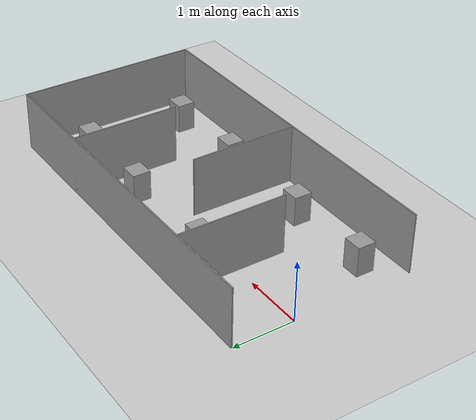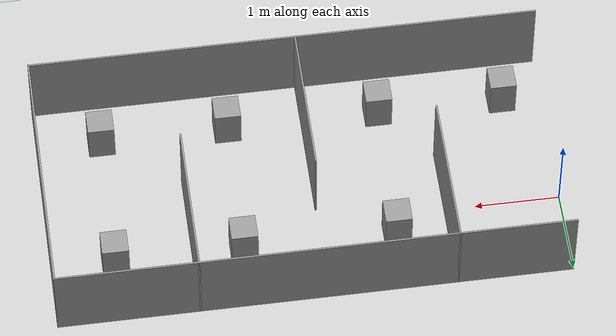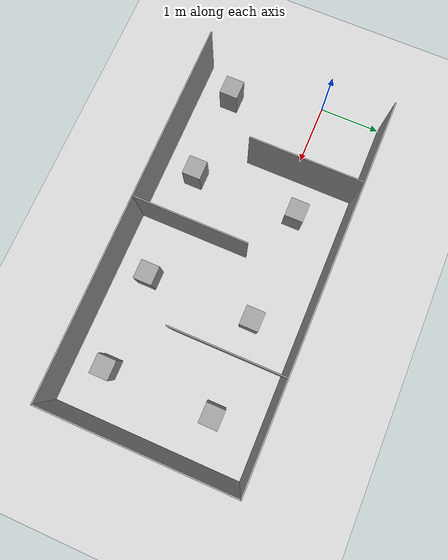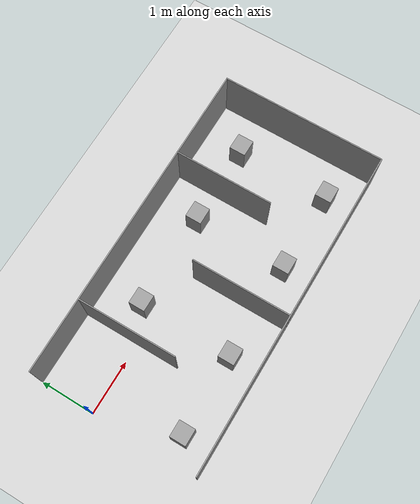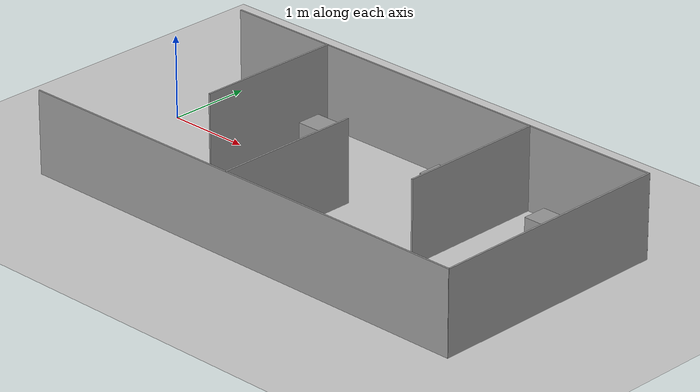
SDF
<sdf version="1.7">
 <world name="default">
  <light name="sun" type="directional">
   <pose>0 0 10 0 -0 0</pose>
   <diffuse>0.8 0.8 0.8 1</diffuse>
   <specular>0.2 0.2 0.2 1</specular>
   <attenuation>
    <range>1000</range>
    <constant>0.9</constant>
    <linear>0.01</linear>
    <quadratic>0.001</quadratic>
   </attenuation>
   <direction>-0.5 0.1 -0.9</direction>
   <spot><inner_angle>0</inner_angle><outer_angle>0</outer_angle><falloff>0</falloff></spot>
  </light>
  <model name="ground_plane">
   <static>1</static>
   <link name="link">
    <collision name="collision">
     <geometry><plane><normal>0 0 1</normal><size>100 100</size></plane></geometry>
     <surface><friction><ode><mu>100</mu><mu2>50</mu2></ode></friction></surface>
    </collision>
    <visual name="visual">
     <cast_shadows>0</cast_shadows>
     <geometry><plane><normal>0 0 1</normal><size>100 100</size></plane></geometry>
     <material>
      <script><uri>file://media/materials/scripts/gazebo.material</uri><name>Gazebo/Grey</name></script>
     </material>
    </visual>
   </link>
  </model>
  <gravity>0 0 -9.8</gravity>
  <magnetic_field>6e-06 2.3e-05 -4.2e-05</magnetic_field>
  <atmosphere type="adiabatic"/>
  <physics type="ode">
   <max_step_size>0.001</max_step_size>
   <real_time_factor>1</real_time_factor>
   <real_time_update_rate>1000</real_time_update_rate>
  </physics>
  <scene><ambient>0.4 0.4 0.4 1</ambient><background>0.7 0.7 0.7 1</background><shadows>1</shadows></scene>
  <spherical_coordinates>
   <surface_model>EARTH_WGS84</surface_model>
   <latitude_deg>0</latitude_deg>
   <longitude_deg>0</longitude_deg>
   <elevation>0</elevation>
   <heading_deg>0</heading_deg>
  </spherical_coordinates>
  <model name="competition">
   <pose>3.00157 -0.5015 0 0 -0 0</pose>
   <link name="Wall_0">
    <collision name="Wall_0_Collision">
     <geometry><box><size>6.02 0.02 1</size></box></geometry>
     <pose>0 0 0.5 0 -0 0</pose>
    </collision>
    <visual name="Wall_0_Visual">
     <pose>0 0 0.5 0 -0 0</pose>
     <geometry><box><size>6.02 0.02 1</size></box></geometry>
     <material>
      <script><uri>file://media/materials/scripts/gazebo.material</uri><name>Gazebo/Grey</name></script>
      <ambient>1 1 1 1</ambient>
     </material>
     <meta><layer>0</layer></meta>
    </visual>
    <pose>0.008432 1.5115 0 0 -0 0</pose>
   </link>
   <link name="Wall_105">
    <collision name="Wall_105_Collision">
     <geometry><box><size>0.31 0.3 0.5</size></box></geometry>
     <pose>0 0 0.25 0 -0 0</pose>
    </collision>
    <visual name="Wall_105_Visual">
     <pose>0 0 0.25 0 -0 0</pose>
     <geometry><box><size>0.31 0.3 0.5</size></box></geometry>
     <material>
      <script><uri>file://media/materials/scripts/gazebo.material</uri><name>Gazebo/Grey</name></script>
      <ambient>1 1 1 1</ambient>
     </material>
     <meta><layer>0</layer></meta>
    </visual>
    <pose>2.26343 0.7615 0 0 -0 0</pose>
   </link>
   <link name="Wall_19">
    <collision name="Wall_19_Collision">
     <geometry><box><size>1.82 0.02 1</size></box></geometry>
     <pose>0 0 0.5 0 -0 0</pose>
    </collision>
    <visual name="Wall_19_Visual">
     <pose>0 0 0.5 0 -0 0</pose>
     <geometry><box><size>1.82 0.02 1</size></box></geometry>
     <material>
      <script><uri>file://media/materials/scripts/gazebo.material</uri><name>Gazebo/Grey</name></script>
      <ambient>1 1 1 1</ambient>
     </material>
     <meta><layer>0</layer></meta>
    </visual>
    <pose>-1.64157 0.6115 0 0 -0 -1.5708</pose>
   </link>
   <link name="Wall_2">
    <collision name="Wall_2_Collision">
     <geometry><box><size>3.04 0.02 1</size></box></geometry>
     <pose>0 0 0.5 0 -0 0</pose>
    </collision>
    <visual name="Wall_2_Visual">
     <pose>0 0 0.5 0 -0 0</pose>
     <geometry><box><size>3.04 0.02 1</size></box></geometry>
     <material>
      <script><uri>file://media/materials/scripts/gazebo.material</uri><name>Gazebo/Grey</name></script>
      <ambient>1 1 1 1</ambient>
     </material>
     <meta><layer>0</layer></meta>
    </visual>
    <pose>3.00843 0.0005 0 0 -0 -1.5708</pose>
   </link>
   <link name="Wall_23">
    <collision name="Wall_23_Collision">
     <geometry><box><size>1.82 0.02 1</size></box></geometry>
     <pose>0 0 0.5 0 -0 0</pose>
    </collision>
    <visual name="Wall_23_Visual">
     <pose>0 0 0.5 0 -0 0</pose>
     <geometry><box><size>1.82 0.02 1</size></box></geometry>
     <material>
      <script><uri>file://media/materials/scripts/gazebo.material</uri><name>Gazebo/Grey</name></script>
      <ambient>1 1 1 1</ambient>
     </material>
     <meta><layer>0</layer></meta>
    </visual>
    <pose>1.35843 0.6115 0 0 -0 -1.5708</pose>
   </link>
   <link name="Wall_26">
    <collision name="Wall_26_Collision">
     <geometry><box><size>1.82 0.02 1</size></box></geometry>
     <pose>0 0 0.5 0 -0 0</pose>
    </collision>
    <visual name="Wall_26_Visual">
     <pose>0 0 0.5 0 -0 0</pose>
     <geometry><box><size>1.82 0.02 1</size></box></geometry>
     <material>
      <script><uri>file://media/materials/scripts/gazebo.material</uri><name>Gazebo/Grey</name></script>
      <ambient>1 1 1 1</ambient>
     </material>
     <meta><layer>0</layer></meta>
    </visual>
    <pose>-0.145568 -0.6115 0 0 -0 1.5708</pose>
   </link>
   <link name="Wall_4">
    <collision name="Wall_4_Collision">
     <geometry><box><size>6.03273 0.02 1</size></box></geometry>
     <pose>0 0 0.5 0 -0 0</pose>
    </collision>
    <visual name="Wall_4_Visual">
     <pose>0 0 0.5 0 -0 0</pose>
     <geometry><box><size>6.03273 0.02 1</size></box></geometry>
     <material>
      <script><uri>file://media/materials/scripts/gazebo.material</uri><name>Gazebo/Grey</name></script>
      <ambient>1 1 1 1</ambient>
     </material>
     <meta><layer>0</layer></meta>
    </visual>
    <pose>-0.002068 -1.5115 0 0 -0 0</pose>
   </link>
   <link name="Wall_53">
    <collision name="Wall_53_Collision">
     <geometry><box><size>0.31 0.3 0.5</size></box></geometry>
     <pose>0 0 0.25 0 -0 0</pose>
    </collision>
    <visual name="Wall_53_Visual">
     <pose>0 0 0.25 0 -0 0</pose>
     <geometry><box><size>0.31 0.3 0.5</size></box></geometry>
     <material>
      <script><uri>file://media/materials/scripts/gazebo.material</uri><name>Gazebo/Grey</name></script>
      <ambient>1 1 1 1</ambient>
     </material>
     <meta><layer>0</layer></meta>
    </visual>
    <pose>-2.54057 -0.9615 0 0 -0 0</pose>
   </link>
   <link name="Wall_59">
    <collision name="Wall_59_Collision">
     <geometry><box><size>0.31 0.3 0.5</size></box></geometry>
     <pose>0 0 0.25 0 -0 0</pose>
    </collision>
    <visual name="Wall_59_Visual">
     <pose>0 0 0.25 0 -0 0</pose>
     <geometry><box><size>0.31 0.3 0.5</size></box></geometry>
     <material>
      <script><uri>file://media/materials/scripts/gazebo.material</uri><name>Gazebo/Grey</name></script>
      <ambient>1 1 1 1</ambient>
     </material>
     <meta><layer>0</layer></meta>
    </visual>
    <pose>-1.05357 -0.9615 0 0 -0 0</pose>
   </link>
   <link name="Wall_80">
    <collision name="Wall_80_Collision">
     <geometry><box><size>0.31 0.3 0.5</size></box></geometry>
     <pose>0 0 0.25 0 -0 0</pose>
    </collision>
    <visual name="Wall_80_Visual">
     <pose>0 0 0.25 0 -0 0</pose>
     <geometry><box><size>0.31 0.3 0.5</size></box></geometry>
     <material>
      <script><uri>file://media/materials/scripts/gazebo.material</uri><name>Gazebo/Grey</name></script>
      <ambient>1 1 1 1</ambient>
     </material>
     <meta><layer>0</layer></meta>
    </visual>
    <pose>0.746432 -0.9615 0 0 -0 0</pose>
   </link>
   <link name="Wall_86">
    <collision name="Wall_86_Collision">
     <geometry><box><size>0.31 0.3 0.5</size></box></geometry>
     <pose>0 0 0.25 0 -0 0</pose>
    </collision>
    <visual name="Wall_86_Visual">
     <pose>0 0 0.25 0 -0 0</pose>
     <geometry><box><size>0.31 0.3 0.5</size></box></geometry>
     <material>
      <script><uri>file://media/materials/scripts/gazebo.material</uri><name>Gazebo/Grey</name></script>
      <ambient>1 1 1 1</ambient>
     </material>
     <meta><layer>0</layer></meta>
    </visual>
    <pose>2.24643 -0.9615 0 0 -0 0</pose>
   </link>
   <link name="Wall_92">
    <collision name="Wall_92_Collision">
     <geometry><box><size>0.31 0.3 0.5</size></box></geometry>
     <pose>0 0 0.25 0 -0 0</pose>
    </collision>
    <visual name="Wall_92_Visual">
     <pose>0 0 0.25 0 -0 0</pose>
     <geometry><box><size>0.31 0.3 0.5</size></box></geometry>
     <material>
      <script><uri>file://media/materials/scripts/gazebo.material</uri><name>Gazebo/Grey</name></script>
      <ambient>1 1 1 1</ambient>
     </material>
     <meta><layer>0</layer></meta>
    </visual>
    <pose>-1.03657 0.7615 0 0 -0 0</pose>
   </link>
   <link name="Wall_99">
    <collision name="Wall_99_Collision">
     <geometry><box><size>0.31 0.3 0.5</size></box></geometry>
     <pose>0 0 0.25 0 -0 0</pose>
    </collision>
    <visual name="Wall_99_Visual">
     <pose>0 0 0.25 0 -0 0</pose>
     <geometry><box><size>0.31 0.3 0.5</size></box></geometry>
     <material>
      <script><uri>file://media/materials/scripts/gazebo.material</uri><name>Gazebo/Grey</name></script>
      <ambient>1 1 1 1</ambient>
     </material>
     <meta><layer>0</layer></meta>
    </visual>
    <pose>0.763432 0.7615 0 0 -0 0</pose>
   </link>
   <static>1</static>
  </model>
 </world>
</sdf>
